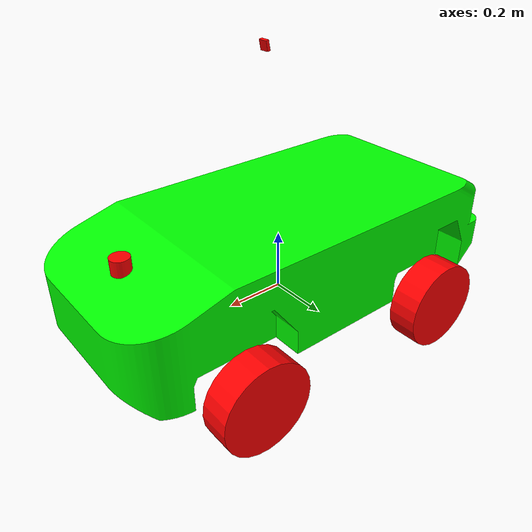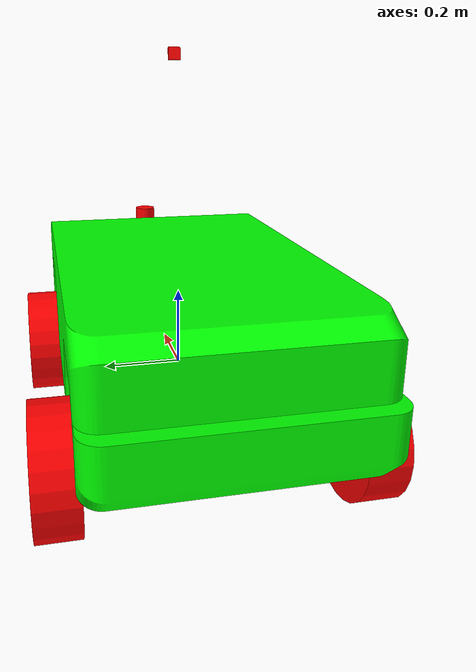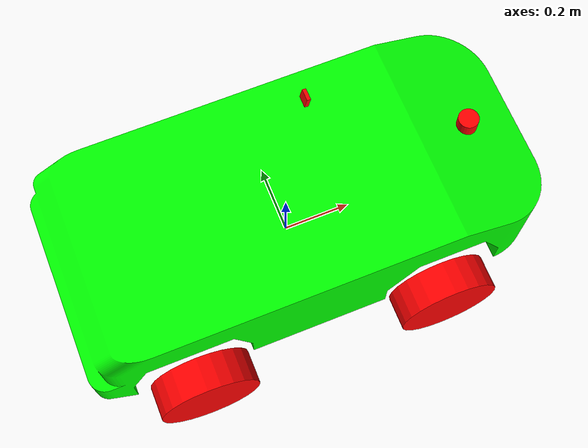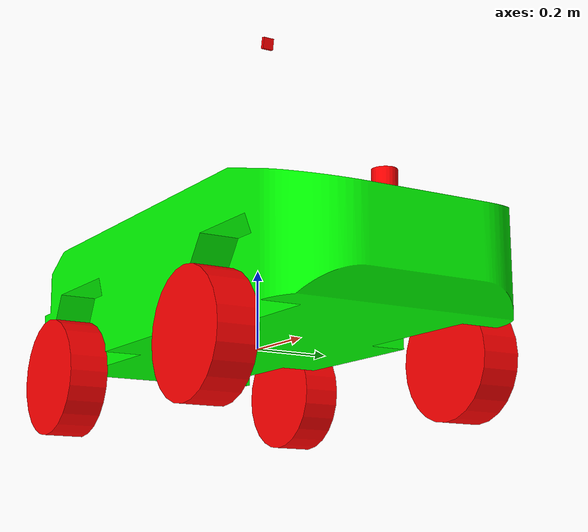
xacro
<?xml version="1.0"?>
<robot name="a_car" xmlns:xacro="http://www.ros.org/wiki/xacro">

<!-- ***** Gazebo Setup ***** -->
<xacro:include filename="$(find car_model)/urdf/car_gazebo_setup.xacro"/>
<!-- ***** Hardware Interface Setup ***** -->
<xacro:include filename="$(find car_model)/urdf/car_hardware_setup.xacro"/>
<!-- ***** Camera Setup ***** -->
<xacro:include filename="$(find car_model)/urdf/car_cam.xacro"/>
<!-- ***** Depth Camera Setup ***** -->
<xacro:include filename="$(find car_model)/urdf/car_depth_cam.xacro"/>
<!-- ***** Lidar Setup ***** -->
<xacro:include filename="$(find car_model)/urdf/car_lidar.xacro"/>

<xacro:property name="math_pi" value="3.14159265"/>

<xacro:property name="body_link_x_dim" value="1.3"/>
<xacro:property name="body_link_y_dim" value="0.6"/>
<xacro:property name="body_link_z_dim" value="0.3"/>

<xacro:property name="steer_link_radius" value="0.1"/>
<xacro:property name="steer_link_length" value="0.05"/>
<xacro:property name="steer_link_x_pos" value="0.3625"/>
<xacro:property name="steer_link_y_pos" value="0.35"/>
<xacro:property name="steer_link_z_pos" value="0.15"/>

<xacro:property name="steer_angle_limit" value="${math_pi/3}"/>

<xacro:property name="wheel_link_radius" value="0.15"/>
<xacro:property name="wheel_link_length" value="0.1"/>
<xacro:property name="wheel_link_x_pos" value="0.3625"/>
<xacro:property name="wheel_link_y_pos" value="0.35"/>
<xacro:property name="wheel_link_z_pos" value="-0.05"/>

<xacro:property name="body_density" value="2710.0"/>
<xacro:property name="steer_density" value="2710.0"/>
<xacro:property name="wheel_density" value="2710.0"/>

<xacro:property name="body_mass" value="${body_density*body_link_x_dim*body_link_y_dim*body_link_z_dim}"/>
<xacro:property name="steer_mass" value="${steer_density*math_pi*steer_link_radius*steer_link_radius*steer_link_length}"/>
<xacro:property name="wheel_mass" value="${wheel_density*math_pi*wheel_link_radius*wheel_link_radius*wheel_link_length}"/>

<!-- ***** Color ***** -->
<xacro:macro name="body_color">
    <material name="green">
			<color rgba="0 1 0 1"/>
	</material>
</xacro:macro>

<xacro:macro name="steer_color">
    <material name="blue">
			<color rgba="0 0 1 1"/>
	</material>
</xacro:macro>

<xacro:macro name="wheel_color">
    <material name="red">
			<color rgba="1 0 0 1"/>
	</material>
</xacro:macro>

<xacro:macro name="cam_color">
    <material name="red">
			<color rgba="1 0 0 1"/>
	</material>
</xacro:macro>

<!-- ############### Setup ############### -->
<!-- ***** Steer Setup ***** -->
<xacro:macro name="steer_link_setup">

    <collision>
		<geometry>
			<cylinder length="${steer_link_length}" radius="${steer_link_radius}"/>
		</geometry>
        <origin rpy="0 0 0" xyz="0 0 0"/>
	</collision>

	<inertial>
	    <origin rpy="0 0 0" xyz="0 0 0"/>
	    <mass value="${steer_mass}"/>
	    <inertia
        ixx="${(1.0/12.0)*steer_mass*(3.0*steer_link_radius*steer_link_radius+steer_link_length*steer_link_length)}" ixy="0.0" ixz="0.0"
        iyy="${(1.0/12.0)*steer_mass*(3.0*steer_link_radius*steer_link_radius+steer_link_length*steer_link_length)}" iyz="0"
        izz="${0.5*steer_mass*steer_link_radius*steer_link_radius}"/>
	</inertial>
</xacro:macro>

<!-- ***** Wheel Setup ***** -->
<xacro:macro name="wheel_link_setup">
    <visual>
        <geometry>
            <cylinder length="${wheel_link_length}" radius="${wheel_link_radius}"/>
        </geometry>
        <origin rpy="1.570795 0 0" xyz="0 0 0"/>
        <xacro:wheel_color/>
    </visual>

    <collision>
		<geometry>
			<cylinder length="${wheel_link_length}" radius="${wheel_link_radius}"/>
		</geometry>
        <origin rpy="1.570795 0 0" xyz="0 0 0"/>
	</collision>

	<inertial>
	    <origin rpy="1.570795 0 0" xyz="0 0 0"/>
	        <mass value="${wheel_mass}"/>
	    <inertia
        ixx="${(1.0/12.0)*wheel_mass*(3.0*wheel_link_radius*wheel_link_radius+wheel_link_length*wheel_link_length)}" ixy="0.0" ixz="0.0"
        iyy="${(1.0/12.0)*wheel_mass*(3.0*wheel_link_radius*wheel_link_radius+wheel_link_length*wheel_link_length)}" iyz="0"
        izz="${0.5*wheel_mass*wheel_link_radius*wheel_link_radius}"/>
	</inertial>
</xacro:macro>

<xacro:macro name="wheel_joint_setup">
    <limit effort="1000" velocity="1000"/>
	<dynamics dampi_constng="1.0" friction="1.0"/>
</xacro:macro>

<!-- ***** Camera Setup ***** -->
<xacro:macro name="cam_pos_setup">
    <origin xyz="0.05 0 0.8" rpy="0 ${pi/16} 0"/>
</xacro:macro>

<xacro:macro name="cam_size_setup">
    <visual>
        <geometry>
            <box size="0.01 0.03 0.03"/>
        </geometry>
        <xacro:cam_color/>
    </visual>
    <collision>
        <geometry>
            <box size="0.01 0.03 0.03"/>
        </geometry>
    </collision>
</xacro:macro>

<!-- ***** Lidar Setup ***** -->
<xacro:macro name="lidar_pos_setup">
    <origin xyz="0.55 0 0.3" rpy="0 0 0"/>
</xacro:macro>

<xacro:macro name="lidar_size_setup">
    <visual>
        <geometry>
            <cylinder length="0.05" radius="0.03"/>
        </geometry>
        <xacro:cam_color/>
    </visual>
    <collision>
        <geometry>
            <cylinder length="0.05" radius="0.03"/>
        </geometry>
    </collision>
</xacro:macro>

<!-- ***** Base Link ***** -->
<link name="base_link">
</link>

<joint name="body_joint" type="fixed">
	<parent link="base_link"/>
	<child link="body_link"/>
    <origin rpy="0 0 0" xyz="0 0 0"/>
</joint>

<!-- ############### Body Part ############### -->
<link name="body_link">
    <visual>
        <geometry>
            <mesh filename="package://car_model/urdf/meshes/visual/henes_body_model.stl"
            scale="0.001 0.001 0.001"/>
        </geometry>
        <origin rpy="0 0 0" xyz="0 0 0"/>
		<xacro:body_color/>
    </visual>

    <collision>
        <geometry>
            <mesh filename="package://car_model/urdf/meshes/visual/henes_body_model.stl"
            scale="0.001 0.001 0.001"/>
        </geometry>
        <origin rpy="0 0 0" xyz="0 0 0"/>
    </collision>

    <inertial>
		<origin rpy="0 0 0" xyz="0 0 0.15"/>
		<mass value="${body_mass}"/>
	<inertia
	ixx="${(1/12)*body_mass*(body_link_y_dim*body_link_y_dim+body_link_z_dim*body_link_z_dim)}" ixy="0" ixz="0"
    iyy="${(1/12)*body_mass*(body_link_x_dim*body_link_x_dim+body_link_z_dim*body_link_z_dim)}" iyz="0"
	izz="${(1/12)*body_mass*(body_link_y_dim*body_link_y_dim+body_link_x_dim*body_link_x_dim)}" />
	</inertial>
</link>

<!-- ############### Camera Part ############### -->
<joint name="camera_joint" type="fixed">
    <parent link="body_link"/>
    <child link="camera_link"/>
    <xacro:cam_pos_setup/>
</joint>

<link name="camera_link">
    <xacro:cam_size_setup/>
</link>

<!-- ############### Depth Camera Part ############### -->
<joint name="depth_cam_joint" type="fixed">
    <parent link="body_link"/>
    <child link="depth_cam_link"/>
    <xacro:cam_pos_setup/>
</joint>

<link name="depth_cam_link">
    <xacro:cam_size_setup/>
</link>

<joint name="depth_cam_optical_joint" type="fixed">
    <parent link="depth_cam_link"/>
    <child link="depth_cam_optical_link"/>
    <origin xyz="0 0 0" rpy="${-math_pi/2} 0 ${-math_pi/2}"/>
</joint>

<link name="depth_cam_optical_link">
</link>

<!-- ############### Lidar Camera Part ############### -->
<joint name="lidar_joint" type="fixed">
    <parent link="body_link"/>
    <child link="lidar_link"/>
    <xacro:lidar_pos_setup/>
</joint>

<link name="lidar_link">
    <xacro:lidar_size_setup/>
</link>

<!-- ############### Steer Part ############### -->
<!-- ***** Front Right ***** -->
<joint name="FR_steer_joint" type="revolute">
    <parent link="body_link"/>
    <child link="FR_steer_link"/>
    <origin xyz="${steer_link_x_pos} ${-steer_link_y_pos} ${steer_link_z_pos}" rpy="0 0 0" />
	<axis xyz="0 0 -1"/>
	<limit lower="${-steer_angle_limit}" upper="${steer_angle_limit}" effort="1000" velocity="1000"/>
	<dynamics dampi_constng="1.0" friction="1.0"/>
</joint>

<link name="FR_steer_link">
    <xacro:steer_link_setup/>
</link>

<!-- ***** Front Left ***** -->
<joint name="FL_steer_joint" type="revolute">
    <parent link="body_link"/>
    <child link="FL_steer_link"/>
    <origin xyz="${steer_link_x_pos} ${steer_link_y_pos} ${steer_link_z_pos}" rpy="0 0 0" />
	<axis xyz="0 0 -1"/>
	<limit lower="${-steer_angle_limit}" upper="${steer_angle_limit}" effort="1000" velocity="1000"/>
	<dynamics dampi_constng="1.0" friction="1.0"/>
</joint>

<link name="FL_steer_link">
    <xacro:steer_link_setup/>
</link>

<!-- ############### Wheel Part ############### -->
<!-- ***** Front Right ***** -->
<joint name="FR_wheel_joint" type="continuous">
    <parent link="FR_steer_link"/>
    <child link="FR_wheel_link"/>
    <origin xyz="0 0 ${wheel_link_z_pos-steer_link_z_pos}" rpy="0 0 0" />
	<axis xyz="0 1 0"/>
    <xacro:wheel_joint_setup/>
</joint>

<link name="FR_wheel_link">
    <xacro:wheel_link_setup/>
</link>

<!-- ***** Front Left ***** -->
<joint name="FL_wheel_joint" type="continuous">
    <parent link="FL_steer_link"/>
    <child link="FL_wheel_link"/>
    <origin xyz="0 0 ${wheel_link_z_pos-steer_link_z_pos}" rpy="0 0 0" />
	<axis xyz="0 1 0"/>
    <xacro:wheel_joint_setup/>
</joint>

<link name="FL_wheel_link">
    <xacro:wheel_link_setup/>
</link>

<!-- ***** Rear Right ***** -->
<joint name="RR_wheel_joint" type="continuous">
    <parent link="body_link"/>
    <child link="RR_wheel_link"/>
    <origin xyz="${-wheel_link_x_pos-0.027} ${-wheel_link_y_pos} ${wheel_link_z_pos}" rpy="0 0 0" />
	<axis xyz="0 1 0"/>
    <xacro:wheel_joint_setup/>
</joint>

<link name="RR_wheel_link">
    <xacro:wheel_link_setup/>
</link>

<!-- ***** Rear Left ***** -->
<joint name="RL_wheel_joint" type="continuous">
    <parent link="body_link"/>
    <child link="RL_wheel_link"/>
    <origin xyz="${-wheel_link_x_pos-0.027} ${wheel_link_y_pos} ${wheel_link_z_pos}" rpy="0 0 0" />
	<axis xyz="0 1 0"/>
    <xacro:wheel_joint_setup/>
</joint>

<link name="RL_wheel_link">
    <xacro:wheel_link_setup/>
</link>

</robot>

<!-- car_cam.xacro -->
<robot>

<joint name="camera_optical_joint" type="fixed">
    <parent link="camera_link"/>
    <child link="camera_optical_link"/>
    <origin xyz="0 0 0" rpy="${-pi/2} 0 ${-pi/2}"/>
</joint>

<link name="camera_optical_link">
</link>

<gazebo reference="camera_link">
    <material>Gazebo/Red</material>
    <sensor name="camera" type="camera">
        <pose>0 0 0 0 0 0</pose>
        <visualize>true</visualize>
        <update_rate>10</update_rate>
        <camera>
            <horizontal_fov>1.089</horizontal_fov>
            <image>
                <format>B8G8R8</format>
                <width>640</width>
                <height>480</height>
            </image>
            <clip>
                <near>0.1</near>
                <far>10.0</far>
            </clip>
        </camera>
        <plugin name="camera_controller" filename="libgazebo_ros_camera.so">
            <frame_name>camera_optical_link</frame_name>
            <min_depth>0.1</min_depth>
            <max_depth>100.0</max_depth>
        </plugin>
    </sensor>
</gazebo>

</robot>
